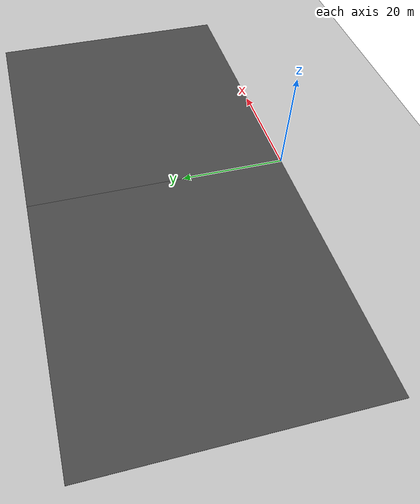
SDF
<sdf version="1.7">
 <world name="default">
  <model name="ground_plane">
   <static>1</static>
   <link name="link">
    <collision name="collision">
     <geometry><plane><normal>0 0 1</normal><size>100 100</size></plane></geometry>
     <surface>
      <contact><collide_bitmask>65535</collide_bitmask></contact>
      <friction><ode><mu>100</mu><mu2>50</mu2></ode></friction>
     </surface>
    </collision>
    <visual name="visual">
     <cast_shadows>0</cast_shadows>
     <geometry><plane><normal>0 0 1</normal><size>100 100</size></plane></geometry>
     <material>
      <script><uri>file://media/materials/scripts/gazebo.material</uri><name>Gazebo/Grey</name></script>
     </material>
    </visual>
   </link>
  </model>
  <model name="asphalt_plane">
   <link name="link">
    <inertial>
     <mass>1</mass>
     <inertia><ixx>1</ixx><ixy>0</ixy><ixz>0</ixz><iyy>1</iyy><iyz>0</iyz><izz>1</izz></inertia>
    </inertial>
    <visual name="visual">
     <cast_shadows>0</cast_shadows>
     <geometry><box><size>50 50 0.1</size></box></geometry>
     <material>
      <script>
       <uri>model://asphalt_plane/materials/scripts</uri>
       <uri>model://asphalt_plane/materials/textures</uri>
       <name>vrc/asphalt</name>
      </script>
      <shader type="pixel"><normal_map>__default__</normal_map></shader>
      <ambient>0.5 0.5 0.5 1</ambient>
      <diffuse>0.5 0.5 0.5 1</diffuse>
      <specular>0.2 0.2 0.2 1</specular>
      <emissive>0 0 0 1</emissive>
     </material>
    </visual>
    <collision name="collision">
     <geometry><box><size>50 50 0.1</size></box></geometry>
     <surface>
      <friction>
       <ode><mu>1</mu><mu2>1</mu2><fdir1>0 0 0</fdir1><slip1>0</slip1><slip2>0</slip2></ode>
       <torsional>
        <coefficient>1</coefficient>
        <patch_radius>0</patch_radius>
        <surface_radius>0</surface_radius>
        <use_patch_radius>1</use_patch_radius>
        <ode><slip>0</slip></ode>
       </torsional>
      </friction>
      <bounce><restitution_coefficient>0</restitution_coefficient><threshold>1e+06</threshold></bounce>
      <contact>
       <collide_without_contact>0</collide_without_contact>
       <collide_without_contact_bitmask>1</collide_without_contact_bitmask>
       <collide_bitmask>1</collide_bitmask>
       <ode>
        <soft_cfm>0</soft_cfm>
        <soft_erp>0.2</soft_erp>
        <kp>1e+13</kp>
        <kd>1</kd>
        <max_vel>0.01</max_vel>
        <min_depth>0</min_depth>
       </ode>
       <bullet>
        <split_impulse>1</split_impulse>
        <split_impulse_penetration_threshold>-0.01</split_impulse_penetration_threshold>
        <soft_cfm>0</soft_cfm>
        <soft_erp>0.2</soft_erp>
        <kp>1e+13</kp>
        <kd>1</kd>
       </bullet>
      </contact>
     </surface>
    </collision>
   </link>
   <static>1</static>
   <pose>25 25 0 0 -0 0</pose>
  </model>
  <model name="asphalt_plane_0">
   <link name="link">
    <inertial>
     <mass>1</mass>
     <inertia><ixx>1</ixx><ixy>0</ixy><ixz>0</ixz><iyy>1</iyy><iyz>0</iyz><izz>1</izz></inertia>
    </inertial>
    <visual name="visual">
     <cast_shadows>0</cast_shadows>
     <geometry><box><size>50 50 0.1</size></box></geometry>
     <material>
      <script>
       <uri>model://asphalt_plane/materials/scripts</uri>
       <uri>model://asphalt_plane/materials/textures</uri>
       <name>vrc/asphalt</name>
      </script>
      <shader type="pixel"><normal_map>__default__</normal_map></shader>
      <ambient>0.5 0.5 0.5 1</ambient>
      <diffuse>0.5 0.5 0.5 1</diffuse>
      <specular>0.2 0.2 0.2 1</specular>
      <emissive>0 0 0 1</emissive>
     </material>
    </visual>
    <collision name="collision">
     <geometry><box><size>50 50 0.1</size></box></geometry>
     <surface>
      <friction>
       <ode><mu>1</mu><mu2>1</mu2><fdir1>0 0 0</fdir1><slip1>0</slip1><slip2>0</slip2></ode>
       <torsional>
        <coefficient>1</coefficient>
        <patch_radius>0</patch_radius>
        <surface_radius>0</surface_radius>
        <use_patch_radius>1</use_patch_radius>
        <ode><slip>0</slip></ode>
       </torsional>
      </friction>
      <bounce><restitution_coefficient>0</restitution_coefficient><threshold>1e+06</threshold></bounce>
      <contact>
       <collide_without_contact>0</collide_without_contact>
       <collide_without_contact_bitmask>1</collide_without_contact_bitmask>
       <collide_bitmask>1</collide_bitmask>
       <ode>
        <soft_cfm>0</soft_cfm>
        <soft_erp>0.2</soft_erp>
        <kp>1e+13</kp>
        <kd>1</kd>
        <max_vel>0.01</max_vel>
        <min_depth>0</min_depth>
       </ode>
       <bullet>
        <split_impulse>1</split_impulse>
        <split_impulse_penetration_threshold>-0.01</split_impulse_penetration_threshold>
        <soft_cfm>0</soft_cfm>
        <soft_erp>0.2</soft_erp>
        <kp>1e+13</kp>
        <kd>1</kd>
       </bullet>
      </contact>
     </surface>
    </collision>
   </link>
   <static>1</static>
   <pose>-25 25 0 0 -0 0</pose>
  </model>
 </world>
</sdf>
